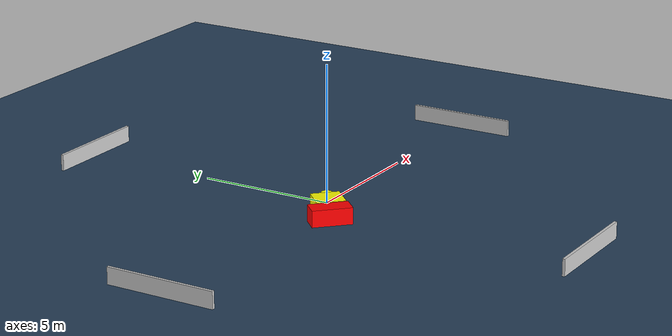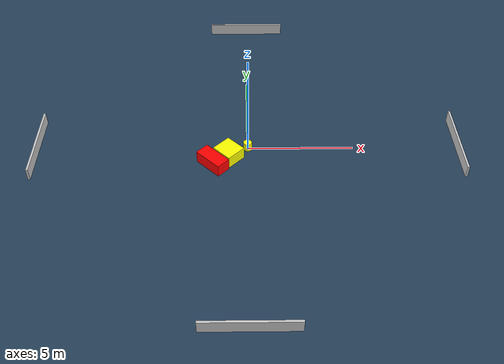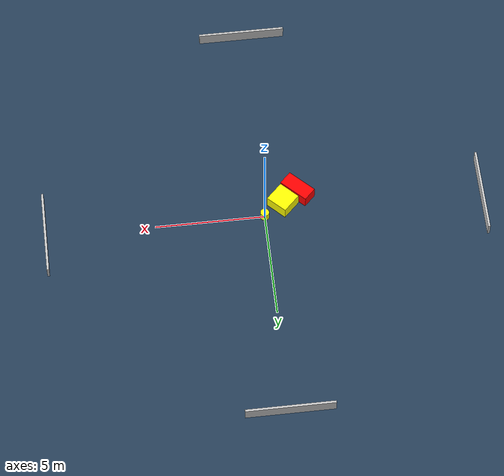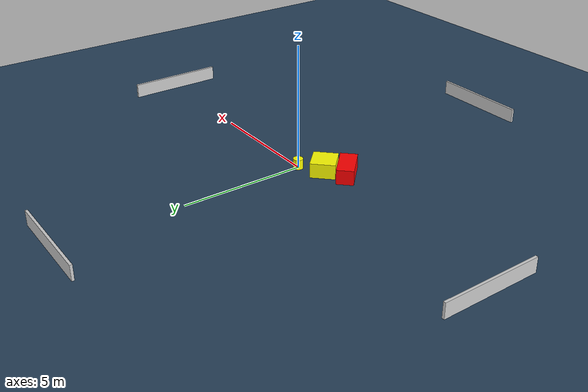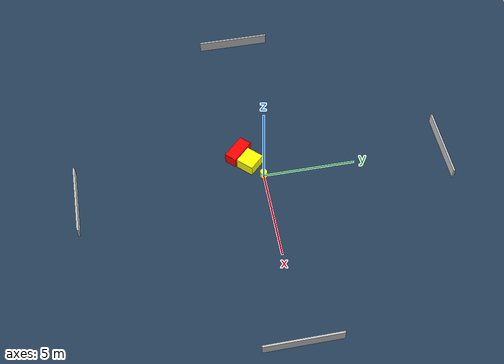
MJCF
<?xml version="1.0" ?>
<mujoco model="generated_environment">
  <option timestep="0.01" integrator="RK4" cone="elliptic"/>
  <default>
    <geom density="1"/>
  </default>
  <asset>
    <texture builtin="gradient" height="3072" name="skybox" rgb1="0.3 0.5 0.7" rgb2="0 0 0" type="skybox" width="512"/>
    <texture builtin="checker" height="300" name="groundplane" rgb1="0.2 0.3 0.4" rgb2="0.1 0.2 0.3" type="2d" width="300"/>
    <material name="groundplane" reflectance="0.2" texrepeat="5 5" texture="groundplane"/>
  </asset>
  <worldbody>
    <light dir="0 0 -1" directional="true" pos="0 0 1.5"/>
    <geom condim="3" friction="0.5 0.005 0.001" material="groundplane" name="floor" pos="0 0 0" size="0 0 0.05" type="plane"/>
    <body name="walls">
      <geom name="wall_1" condim="4" pos="-10.0 0.0 0.3" rgba="0.800000011920929 0.800000011920929 0.800000011920929 1.0" size="0.05 2.0 0.3" type="box"/>
      <geom name="wall_2" condim="4" pos="10.0 0.0 0.3" rgba="0.800000011920929 0.800000011920929 0.800000011920929 1.0" size="0.05 2.0 0.3" type="box"/>
      <geom name="wall_3" condim="4" pos="0.0 -10.0 0.3" rgba="0.800000011920929 0.800000011920929 0.800000011920929 1.0" size="2.0 0.05 0.3" type="box"/>
      <geom name="wall_4" condim="4" pos="0.0 10.0 0.3" rgba="0.800000011920929 0.800000011920929 0.800000011920929 1.0" size="2.0 0.05 0.3" type="box"/>
    </body>
    <body name="robot">
      <joint name="joint_x" type="slide" pos="0 0 0" axis="1 0 0"/>
      <joint name="joint_y" type="slide" pos="0 0 0" axis="0 1 0"/>
      <geom name="robot" type="cylinder" pos="0.0 0.0 0.2" size="0.2 0.2 0.0" mass="5.0" friction="1.0 0.005 0.0001" condim="4" rgba="1.0 1.0 0.0 1.0"/>
    </body>
    <body name="obstacle_1_movable">
      <geom name="obstacle_1_movable" condim="4" pos="-0.896238411963143 -0.5926933684830915 0.3" euler="0 0 315.0675708468321" friction="0.0 0.005 0.001" rgba="1.0 1.0 0.0 1.0" size="0.5208907834648493 0.49468976937911374 0.3" type="box" mass="0.1"/>
      <joint type="free"/>
    </body>
    <body name="obstacle_2_static">
      <geom name="obstacle_2_static" condim="4" pos="-1.6320775991051881 -1.1188765996847665 0.3" euler="0 0 135.38786839275755" friction="0.0 0.005 0.001" rgba="1.0 0.0 0.0 1.0" size="0.7203202633535559 0.3426525794471314 0.3" type="box"/>
    </body>
  </worldbody>
  <actuator>
    <motor name="actuator_x" joint="joint_x" gear="1" ctrlrange="-1 1"/>
    <motor name="actuator_y" joint="joint_y" gear="1" ctrlrange="-1 1"/>
  </actuator>
</mujoco>
